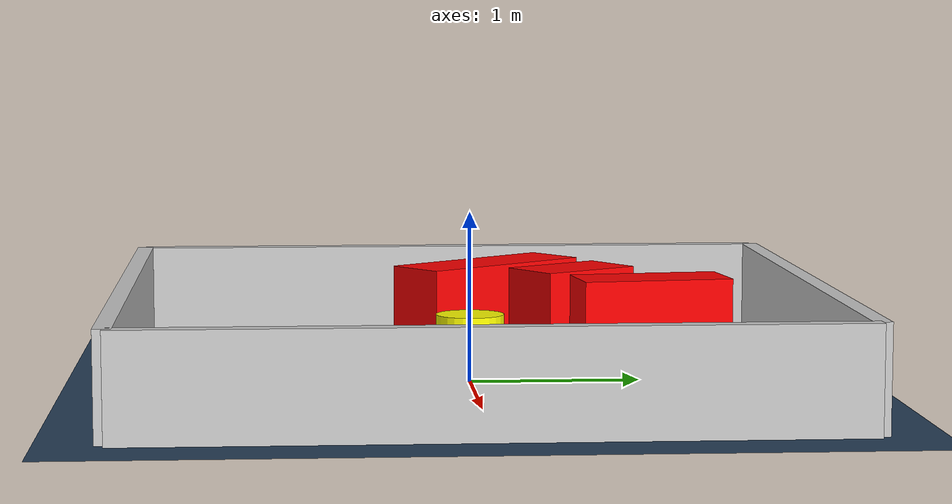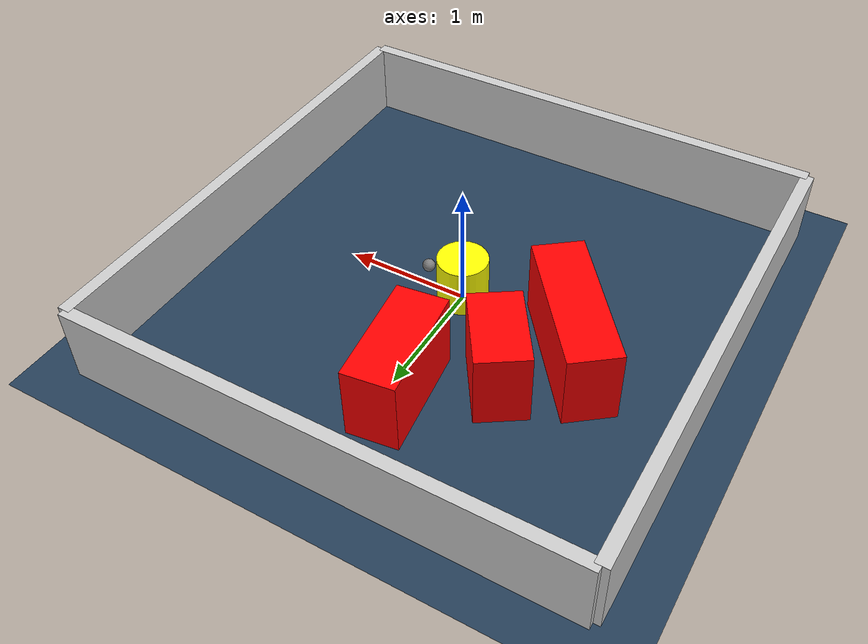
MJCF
<?xml version="1.0" ?>
<mujoco model="generated_environment">
  <option timestep="0.01" integrator="RK4" cone="elliptic"/>
  <default>
    <geom density="1"/>
  </default>
  <asset>
    <texture builtin="gradient" height="3072" rgb1="0.3 0.5 0.7" rgb2="0 0 0" type="skybox" width="512"/>
    <texture builtin="checker" height="300" mark="edge" markrgb="0.8 0.8 0.8" name="groundplane" rgb1="0.2 0.3 0.4" rgb2="0.1 0.2 0.3" type="2d" width="300"/>
    <material name="groundplane" reflectance="0.2" texrepeat="5 5" texture="groundplane" texuniform="true"/>
    <material name="robot" rgba="0.0 1.0 0.0 1"/>
  </asset>
  <worldbody>
    <light dir="0 0 -1" directional="true" pos="0 0 1.5"/>
    <geom condim="4" friction="1.0 0.005 0.001" material="groundplane" name="floor" size="0 0 0.05" type="plane"/>
    <body name="walls">
      <geom name="wall_1" condim="4" pos="-2.0 0.0 0.3" rgba="0.800000011920929 0.800000011920929 0.800000011920929 1.0" size="0.05 2.0 0.3" type="box"/>
      <geom name="wall_2" condim="4" pos="2.0 0.0 0.3" rgba="0.800000011920929 0.800000011920929 0.800000011920929 1.0" size="0.05 2.0 0.3" type="box"/>
      <geom name="wall_3" condim="4" pos="0.0 -2.0 0.3" rgba="0.800000011920929 0.800000011920929 0.800000011920929 1.0" size="2.0 0.05 0.3" type="box"/>
      <geom name="wall_4" condim="4" pos="0.0 2.0 0.3" rgba="0.800000011920929 0.800000011920929 0.800000011920929 1.0" size="2.0 0.05 0.3" type="box"/>
    </body>
    <body name="robot">
      <joint name="joint_x" type="slide" pos="0 0 0" axis="1 0 0"/>
      <joint name="joint_y" type="slide" pos="0 0 0" axis="0 1 0"/>
      <geom name="robot" type="sphere" pos="0.3 0.0 0.2" size="0.05" mass="5." friction="1.0 0.005 0.0001" condim="4" rgba="0.5 0.5 0.5 1.0"/>
      <site name="sensor_ball"/>
    </body>
    <body name="obstacle_movable_1">
      <geom name="obstacle_movable_1" condim="4" pos="0.0 0.0 0.2" euler="0 0 0.0" friction="1.0 0.005 0.001" rgba="1.0 1.0 0.0 1.0" size="0.2 0.2 0.0" type="cylinder" mass="0.1"/>
      <joint type="free"/>
    </body>
    <body name="obstacle_2_static">
      <geom name="obstacle_2_static" condim="4" pos="-0.6564748108077658 0.667297424032421 0.3" euler="0 0 303.51440470765374" friction="1.0 0.005 0.001" rgba="1 0 0 1" size="0.3296879915222885 0.2 0.3" type="box"/>
    </body>
    <body name="obstacle_3_static">
      <geom name="obstacle_3_static" condim="4" pos="-0.995274868460015 0.16985844278673046 0.3" euler="0 0 308.0574785923852" friction="1.0 0.005 0.001" rgba="1 0 0 1" size="0.5890573170918447 0.2 0.3" type="box"/>
    </body>
    <body name="obstacle_4_static">
      <geom name="obstacle_4_static" condim="4" pos="-0.10176685048783551 1.081808855530278 0.3" euler="0 0 97.37529022738096" friction="1.0 0.005 0.001" rgba="1 0 0 1" size="0.4457087468566674 0.2 0.3" type="box"/>
    </body>
  </worldbody>
  <actuator>
    <motor name="actuator_x" joint="joint_x" gear="1" ctrlrange="-1 1"/>
    <motor name="actuator_y" joint="joint_y" gear="1" ctrlrange="-1 1"/>
  </actuator>
</mujoco>
